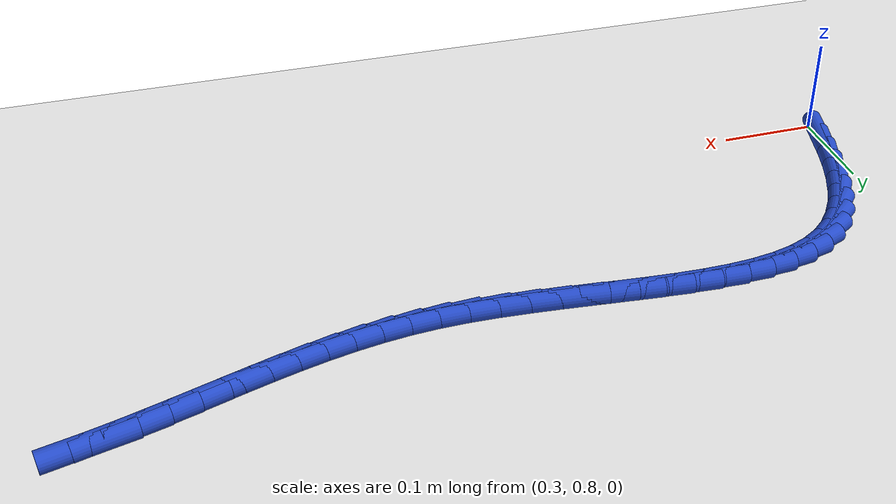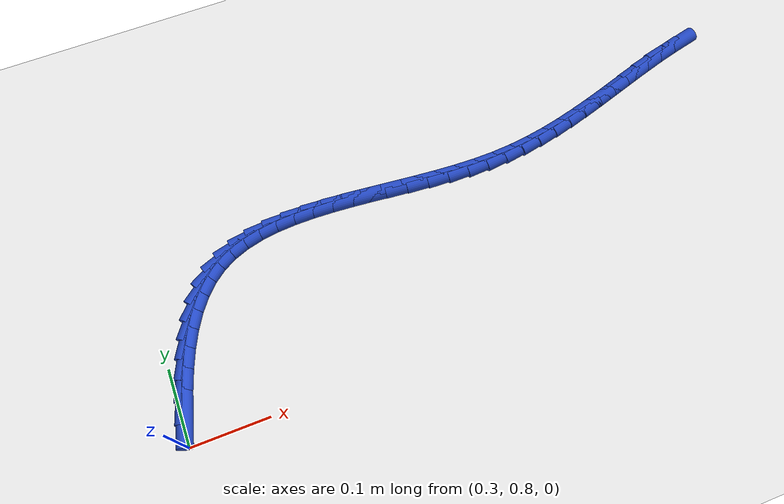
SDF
<sdf version="1.6">
 <world name="default">
  <model name="ground_plane">
   <static>1</static>
   <link name="link">
    <collision name="collision">
     <geometry><plane><normal>0 0 1</normal><size>100 100</size></plane></geometry>
     <surface><friction><ode><mu>100</mu><mu2>50</mu2></ode></friction></surface>
    </collision>
    <visual name="visual">
     <cast_shadows>0</cast_shadows>
     <geometry><plane><normal>0 0 1</normal><size>100 100</size></plane></geometry>
     <material>
      <script><uri>file://media/materials/scripts/gazebo.material</uri><name>Gazebo/WhiteGlow</name></script>
     </material>
    </visual>
   </link>
  </model>
  <model name="line">
   <link name="link_35">
    <pose>0.3065615027193788 0.8373172774698407 0.01 0 1.57 1.3249170636117835</pose>
    <collision name="collision">
     <geometry><cylinder><radius>0.01</radius><length>0.08</length></cylinder></geometry>
    </collision>
    <visual name="visual">
     <material>
      <script><name>Gazebo/Blue</name><uri>file://media/materials/scripts/gazebo.material</uri></script>
     </material>
     <geometry><cylinder><radius>0.01</radius><length>0.08</length></cylinder></geometry>
    </visual>
   </link>
   <link name="link_36">
    <pose>0.31324673697177907 0.8639562295625131 0.01 0 1.57 1.2800580878205712</pose>
    <collision name="collision">
     <geometry><cylinder><radius>0.01</radius><length>0.08</length></cylinder></geometry>
    </collision>
    <visual name="visual">
     <material>
      <script><name>Gazebo/Blue</name><uri>file://media/materials/scripts/gazebo.material</uri></script>
     </material>
     <geometry><cylinder><radius>0.01</radius><length>0.08</length></cylinder></geometry>
    </visual>
   </link>
   <link name="link_37">
    <pose>0.32086733177804494 0.8894246897559747 0.01 0 1.57 1.2237079512460936</pose>
    <collision name="collision">
     <geometry><cylinder><radius>0.01</radius><length>0.08</length></cylinder></geometry>
    </collision>
    <visual name="visual">
     <material>
      <script><name>Gazebo/Blue</name><uri>file://media/materials/scripts/gazebo.material</uri></script>
     </material>
     <geometry><cylinder><radius>0.01</radius><length>0.08</length></cylinder></geometry>
    </visual>
   </link>
   <link name="link_38">
    <pose>0.3295680170905876 0.9134775123739178 0.01 0 1.57 1.1535611157842798</pose>
    <collision name="collision">
     <geometry><cylinder><radius>0.01</radius><length>0.08</length></cylinder></geometry>
    </collision>
    <visual name="visual">
     <material>
      <script><name>Gazebo/Blue</name><uri>file://media/materials/scripts/gazebo.material</uri></script>
     </material>
     <geometry><cylinder><radius>0.01</radius><length>0.08</length></cylinder></geometry>
    </visual>
   </link>
   <link name="link_39">
    <pose>0.3394935228618183 0.9358695517400353 0.01 0 1.57 1.0669157712887294</pose>
    <collision name="collision">
     <geometry><cylinder><radius>0.01</radius><length>0.08</length></cylinder></geometry>
    </collision>
    <visual name="visual">
     <material>
      <script><name>Gazebo/Blue</name><uri>file://media/materials/scripts/gazebo.material</uri></script>
     </material>
     <geometry><cylinder><radius>0.01</radius><length>0.08</length></cylinder></geometry>
    </visual>
   </link>
   <link name="link_40">
    <pose>0.3507885790441476 0.9563556621780187 0.01 0 1.57 0.96099296609431</pose>
    <collision name="collision">
     <geometry><cylinder><radius>0.01</radius><length>0.08</length></cylinder></geometry>
    </collision>
    <visual name="visual">
     <material>
      <script><name>Gazebo/Blue</name><uri>file://media/materials/scripts/gazebo.material</uri></script>
     </material>
     <geometry><cylinder><radius>0.01</radius><length>0.08</length></cylinder></geometry>
    </visual>
   </link>
   <link name="link_41">
    <pose>0.3635979155899872 0.974690698011561 0.01 0 1.57 0.8337198050977895</pose>
    <collision name="collision">
     <geometry><cylinder><radius>0.01</radius><length>0.08</length></cylinder></geometry>
    </collision>
    <visual name="visual">
     <material>
      <script><name>Gazebo/Blue</name><uri>file://media/materials/scripts/gazebo.material</uri></script>
     </material>
     <geometry><cylinder><radius>0.01</radius><length>0.08</length></cylinder></geometry>
    </visual>
   </link>
   <link name="link_42">
    <pose>0.37806626245174757 0.9906295135643537 0.01 0 1.57 0.6851374240069088</pose>
    <collision name="collision">
     <geometry><cylinder><radius>0.01</radius><length>0.08</length></cylinder></geometry>
    </collision>
    <visual name="visual">
     <material>
      <script><name>Gazebo/Blue</name><uri>file://media/materials/scripts/gazebo.material</uri></script>
     </material>
     <geometry><cylinder><radius>0.01</radius><length>0.08</length></cylinder></geometry>
    </visual>
   </link>
   <link name="link_43">
    <pose>0.3943383495818402 1.0039269631600896 0.01 0 1.57 0.5220859281121061</pose>
    <collision name="collision">
     <geometry><cylinder><radius>0.01</radius><length>0.08</length></cylinder></geometry>
    </collision>
    <visual name="visual">
     <material>
      <script><name>Gazebo/Blue</name><uri>file://media/materials/scripts/gazebo.material</uri></script>
     </material>
     <geometry><cylinder><radius>0.01</radius><length>0.08</length></cylinder></geometry>
    </visual>
   </link>
   <link name="link_44">
    <pose>0.4125269788089199 1.0143915163008872 0.01 0 1.57 0.3712828970342463</pose>
    <collision name="collision">
     <geometry><cylinder><radius>0.01</radius><length>0.08</length></cylinder></geometry>
    </collision>
    <visual name="visual">
     <material>
      <script><name>Gazebo/Blue</name><uri>file://media/materials/scripts/gazebo.material</uri></script>
     </material>
     <geometry><cylinder><radius>0.01</radius><length>0.08</length></cylinder></geometry>
    </visual>
   </link>
   <link name="link_45">
    <pose>0.43253633831968685 1.0221819561408974 0.01 0 1.57 0.2451162470799167</pose>
    <collision name="collision">
     <geometry><cylinder><radius>0.01</radius><length>0.08</length></cylinder></geometry>
    </collision>
    <visual name="visual">
     <material>
      <script><name>Gazebo/Blue</name><uri>file://media/materials/scripts/gazebo.material</uri></script>
     </material>
     <geometry><cylinder><radius>0.01</radius><length>0.08</length></cylinder></geometry>
    </visual>
   </link>
   <link name="link_46">
    <pose>0.4541868401345629 1.027597746637728 0.01 0 1.57 0.14356287580195579</pose>
    <collision name="collision">
     <geometry><cylinder><radius>0.01</radius><length>0.08</length></cylinder></geometry>
    </collision>
    <visual name="visual">
     <material>
      <script><name>Gazebo/Blue</name><uri>file://media/materials/scripts/gazebo.material</uri></script>
     </material>
     <geometry><cylinder><radius>0.01</radius><length>0.08</length></cylinder></geometry>
    </visual>
   </link>
   <link name="link_47">
    <pose>0.4772986699005165 1.030938731885734 0.01 0 1.57 0.06411084877383419</pose>
    <collision name="collision">
     <geometry><cylinder><radius>0.01</radius><length>0.08</length></cylinder></geometry>
    </collision>
    <visual name="visual">
     <material>
      <script><name>Gazebo/Blue</name><uri>file://media/materials/scripts/gazebo.material</uri></script>
     </material>
     <geometry><cylinder><radius>0.01</radius><length>0.08</length></cylinder></geometry>
    </visual>
   </link>
   <link name="link_48">
    <pose>0.5016920132645161 1.0325047559792688 0.01 0 1.57 0.0035656597853853346</pose>
    <collision name="collision">
     <geometry><cylinder><radius>0.01</radius><length>0.08</length></cylinder></geometry>
    </collision>
    <visual name="visual">
     <material>
      <script><name>Gazebo/Blue</name><uri>file://media/materials/scripts/gazebo.material</uri></script>
     </material>
     <geometry><cylinder><radius>0.01</radius><length>0.08</length></cylinder></geometry>
    </visual>
   </link>
   <link name="link_49">
    <pose>0.5271870558735302 1.0325956630126887 0.01 0 1.57 -0.041025115922587826</pose>
    <collision name="collision">
     <geometry><cylinder><radius>0.01</radius><length>0.08</length></cylinder></geometry>
    </collision>
    <visual name="visual">
     <material>
      <script><name>Gazebo/Blue</name><uri>file://media/materials/scripts/gazebo.material</uri></script>
     </material>
     <geometry><cylinder><radius>0.01</radius><length>0.08</length></cylinder></geometry>
    </visual>
   </link>
   <link name="link_50">
    <pose>0.5536039833745275 1.0315112970803466 0.01 0 1.57 -0.07203519770259051</pose>
    <collision name="collision">
     <geometry><cylinder><radius>0.01</radius><length>0.08</length></cylinder></geometry>
    </collision>
    <visual name="visual">
     <material>
      <script><name>Gazebo/Blue</name><uri>file://media/materials/scripts/gazebo.material</uri></script>
     </material>
     <geometry><cylinder><radius>0.01</radius><length>0.08</length></cylinder></geometry>
    </visual>
   </link>
   <link name="link_51">
    <pose>0.5807629814144761 1.029551502276598 0.01 0 1.57 -0.09120602697447878</pose>
    <collision name="collision">
     <geometry><cylinder><radius>0.01</radius><length>0.08</length></cylinder></geometry>
    </collision>
    <visual name="visual">
     <material>
      <script><name>Gazebo/Blue</name><uri>file://media/materials/scripts/gazebo.material</uri></script>
     </material>
     <geometry><cylinder><radius>0.01</radius><length>0.08</length></cylinder></geometry>
    </visual>
   </link>
   <link name="link_52">
    <pose>0.6084842356403452 1.027016122695797 0.01 0 1.57 -0.09969509824413124</pose>
    <collision name="collision">
     <geometry><cylinder><radius>0.01</radius><length>0.08</length></cylinder></geometry>
    </collision>
    <visual name="visual">
     <material>
      <script><name>Gazebo/Blue</name><uri>file://media/materials/scripts/gazebo.material</uri></script>
     </material>
     <geometry><cylinder><radius>0.01</radius><length>0.08</length></cylinder></geometry>
    </visual>
   </link>
   <link name="link_53">
    <pose>0.6365879316991025 1.0242050024322984 0.01 0 1.57 -0.09814283721443187</pose>
    <collision name="collision">
     <geometry><cylinder><radius>0.01</radius><length>0.08</length></cylinder></geometry>
    </collision>
    <visual name="visual">
     <material>
      <script><name>Gazebo/Blue</name><uri>file://media/materials/scripts/gazebo.material</uri></script>
     </material>
     <geometry><cylinder><radius>0.01</radius><length>0.08</length></cylinder></geometry>
    </visual>
   </link>
   <link name="link_54">
    <pose>0.6648942552377173 1.0214179855804564 0.01 0 1.57 -0.08672664268167486</pose>
    <collision name="collision">
     <geometry><cylinder><radius>0.01</radius><length>0.08</length></cylinder></geometry>
    </collision>
    <visual name="visual">
     <material>
      <script><name>Gazebo/Blue</name><uri>file://media/materials/scripts/gazebo.material</uri></script>
     </material>
     <geometry><cylinder><radius>0.01</radius><length>0.08</length></cylinder></geometry>
    </visual>
   </link>
   <link name="link_55">
    <pose>0.6932233919031578 1.0189549162346259 0.01 0 1.57 -0.06519460199224986</pose>
    <collision name="collision">
     <geometry><cylinder><radius>0.01</radius><length>0.08</length></cylinder></geometry>
    </collision>
    <visual name="visual">
     <material>
      <script><name>Gazebo/Blue</name><uri>file://media/materials/scripts/gazebo.material</uri></script>
     </material>
     <geometry><cylinder><radius>0.01</radius><length>0.08</length></cylinder></geometry>
    </visual>
   </link>
   <link name="link_56">
    <pose>0.7213955273423923 1.0171156384891609 0.01 0 1.57 -0.03288311411130371</pose>
    <collision name="collision">
     <geometry><cylinder><radius>0.01</radius><length>0.08</length></cylinder></geometry>
    </collision>
    <visual name="visual">
     <material>
      <script><name>Gazebo/Blue</name><uri>file://media/materials/scripts/gazebo.material</uri></script>
     </material>
     <geometry><cylinder><radius>0.01</radius><length>0.08</length></cylinder></geometry>
    </visual>
   </link>
   <link name="link_57">
    <pose>0.7492308472023899 1.0161999964384165 0.01 0 1.57 0.011267916240929989</pose>
    <collision name="collision">
     <geometry><cylinder><radius>0.01</radius><length>0.08</length></cylinder></geometry>
    </collision>
    <visual name="visual">
     <material>
      <script><name>Gazebo/Blue</name><uri>file://media/materials/scripts/gazebo.material</uri></script>
     </material>
     <geometry><cylinder><radius>0.01</radius><length>0.08</length></cylinder></geometry>
    </visual>
   </link>
   <link name="link_58">
    <pose>0.7765495371301183 1.0165078341767466 0.01 0 1.57 0.0666203349146883</pose>
    <collision name="collision">
     <geometry><cylinder><radius>0.01</radius><length>0.08</length></cylinder></geometry>
    </collision>
    <visual name="visual">
     <material>
      <script><name>Gazebo/Blue</name><uri>file://media/materials/scripts/gazebo.material</uri></script>
     </material>
     <geometry><cylinder><radius>0.01</radius><length>0.08</length></cylinder></geometry>
    </visual>
   </link>
   <link name="link_59">
    <pose>0.8032015014409702 1.018286028445497 0.01 0 1.57 0.12159480123474244</pose>
    <collision name="collision">
     <geometry><cylinder><radius>0.01</radius><length>0.08</length></cylinder></geometry>
    </collision>
    <visual name="visual">
     <material>
      <script><name>Gazebo/Blue</name><uri>file://media/materials/scripts/gazebo.material</uri></script>
     </material>
     <geometry><cylinder><radius>0.01</radius><length>0.08</length></cylinder></geometry>
    </visual>
   </link>
   <link name="link_60">
    <pose>0.8292143477160111 1.0214647368292324 0.01 0 1.57 0.17078445713300466</pose>
    <collision name="collision">
     <geometry><cylinder><radius>0.01</radius><length>0.08</length></cylinder></geometry>
    </collision>
    <visual name="visual">
     <material>
      <script><name>Gazebo/Blue</name><uri>file://media/materials/scripts/gazebo.material</uri></script>
     </material>
     <geometry><cylinder><radius>0.01</radius><length>0.08</length></cylinder></geometry>
    </visual>
   </link>
   <link name="link_61">
    <pose>0.8546814468705937 1.0258569074301631 0.01 0 1.57 0.21331181133916893</pose>
    <collision name="collision">
     <geometry><cylinder><radius>0.01</radius><length>0.08</length></cylinder></geometry>
    </collision>
    <visual name="visual">
     <material>
      <script><name>Gazebo/Blue</name><uri>file://media/materials/scripts/gazebo.material</uri></script>
     </material>
     <geometry><cylinder><radius>0.01</radius><length>0.08</length></cylinder></geometry>
    </visual>
   </link>
   <link name="link_62">
    <pose>0.8796962761818704 1.0312752987826839 0.01 0 1.57 0.24853929267513367</pose>
    <collision name="collision">
     <geometry><cylinder><radius>0.01</radius><length>0.08</length></cylinder></geometry>
    </collision>
    <visual name="visual">
     <material>
      <script><name>Gazebo/Blue</name><uri>file://media/materials/scripts/gazebo.material</uri></script>
     </material>
     <geometry><cylinder><radius>0.01</radius><length>0.08</length></cylinder></geometry>
    </visual>
   </link>
   <link name="link_63">
    <pose>0.904352312926995 1.0375326694211888 0.01 0 1.57 0.2760364479904393</pose>
    <collision name="collision">
     <geometry><cylinder><radius>0.01</radius><length>0.08</length></cylinder></geometry>
    </collision>
    <visual name="visual">
     <material>
      <script><name>Gazebo/Blue</name><uri>file://media/materials/scripts/gazebo.material</uri></script>
     </material>
     <geometry><cylinder><radius>0.01</radius><length>0.08</length></cylinder></geometry>
    </visual>
   </link>
   <link name="link_64">
    <pose>0.9287430343831202 1.044441777880073 0.01 0 1.57 0.29554060983505515</pose>
    <collision name="collision">
     <geometry><cylinder><radius>0.01</radius><length>0.08</length></cylinder></geometry>
    </collision>
    <visual name="visual">
     <material>
      <script><name>Gazebo/Blue</name><uri>file://media/materials/scripts/gazebo.material</uri></script>
     </material>
     <geometry><cylinder><radius>0.01</radius><length>0.08</length></cylinder></geometry>
    </visual>
   </link>
   <link name="link_65">
    <pose>0.9529619178273989 1.0518153826937306 0.01 0 1.57 0.30691577932868613</pose>
    <collision name="collision">
     <geometry><cylinder><radius>0.01</radius><length>0.08</length></cylinder></geometry>
    </collision>
    <visual name="visual">
     <material>
      <script><name>Gazebo/Blue</name><uri>file://media/materials/scripts/gazebo.material</uri></script>
     </material>
     <geometry><cylinder><radius>0.01</radius><length>0.08</length></cylinder></geometry>
    </visual>
   </link>
   <link name="link_66">
    <pose>0.9771024405369845 1.059466242396557 0.01 0 1.57 0.3101151385586102</pose>
    <collision name="collision">
     <geometry><cylinder><radius>0.01</radius><length>0.08</length></cylinder></geometry>
    </collision>
    <visual name="visual">
     <material>
      <script><name>Gazebo/Blue</name><uri>file://media/materials/scripts/gazebo.material</uri></script>
     </material>
     <geometry><cylinder><radius>0.01</radius><length>0.08</length></cylinder></geometry>
    </visual>
   </link>
   <link name="link_67">
    <pose>1.0012579488888844 1.0672069828455926 0.01 0 1.57 0.30489703578081173</pose>
    <collision name="collision">
     <geometry><cylinder><radius>0.01</radius><length>0.08</length></cylinder></geometry>
    </collision>
    <visual name="visual">
     <material>
      <script><name>Gazebo/Blue</name><uri>file://media/materials/scripts/gazebo.material</uri></script>
     </material>
     <geometry><cylinder><radius>0.01</radius><length>0.08</length></cylinder></geometry>
    </visual>
   </link>
   <link name="link_68">
    <pose>1.0255115263972407 1.0748398276979407 0.01 0 1.57 0.29086624698914676</pose>
    <collision name="collision">
     <geometry><cylinder><radius>0.01</radius><length>0.08</length></cylinder></geometry>
    </collision>
    <visual name="visual">
     <material>
      <script><name>Gazebo/Blue</name><uri>file://media/materials/scripts/gazebo.material</uri></script>
     </material>
     <geometry><cylinder><radius>0.01</radius><length>0.08</length></cylinder></geometry>
    </visual>
   </link>
   <link name="link_69">
    <pose>1.049928783494392 1.082149290299964 0.01 0 1.57 0.2680468911658664</pose>
    <collision name="collision">
     <geometry><cylinder><radius>0.01</radius><length>0.08</length></cylinder></geometry>
    </collision>
    <visual name="visual">
     <material>
      <script><name>Gazebo/Blue</name><uri>file://media/materials/scripts/gazebo.material</uri></script>
     </material>
     <geometry><cylinder><radius>0.01</radius><length>0.08</length></cylinder></geometry>
    </visual>
   </link>
   <link name="link_70">
    <pose>1.074573628392405 1.0889181586670098 0.01 0 1.57 0.23654351456224224</pose>
    <collision name="collision">
     <geometry><cylinder><radius>0.01</radius><length>0.08</length></cylinder></geometry>
    </collision>
    <visual name="visual">
     <material>
      <script><name>Gazebo/Blue</name><uri>file://media/materials/scripts/gazebo.material</uri></script>
     </material>
     <geometry><cylinder><radius>0.01</radius><length>0.08</length></cylinder></geometry>
    </visual>
   </link>
  </model>
 </world>
</sdf>
